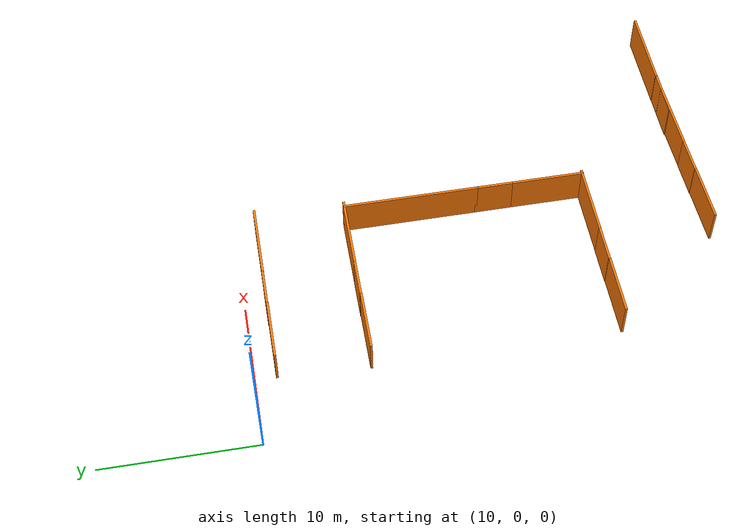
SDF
<sdf version="1.7">
 <world name="cimen_zemin_dunyasi">
  <model name="barier3_clone_clone_clone_clone_0_clone_clone">
   <link name="Wall_5">
    <pose>-1.25417 -2.31114 0 0 -0 0</pose>
    <inertial>
     <inertia><ixx>0</ixx><ixy>0</ixy><ixz>0</ixz><iyy>0</iyy><iyz>0</iyz><izz>0</izz></inertia>
     <mass>0</mass>
    </inertial>
    <visual name="Wall_5_Visual">
     <pose>0 0 1.25 0 -0 0</pose>
     <geometry><box><size>4.04839 0.15 2.5</size></box></geometry>
     <material>
      <script><uri>file://media/materials/scripts/gazebo.material</uri><name>Gazebo/Grey</name></script>
      <ambient>0.996078 0.47451 0.0196078 1</ambient>
      <shader type="pixel"/>
     </material>
     <meta><layer>0</layer></meta>
    </visual>
    <collision name="Wall_5_Collision">
     <pose>0 0 1.25 0 -0 0</pose>
     <geometry><box><size>4.04839 0.15 2.5</size></box></geometry>
     <surface>
      <friction>
       <ode><mu>1</mu><mu2>1</mu2><fdir1>0 0 0</fdir1><slip1>0</slip1><slip2>0</slip2></ode>
       <torsional>
        <coefficient>1</coefficient>
        <patch_radius>0</patch_radius>
        <surface_radius>0</surface_radius>
        <use_patch_radius>1</use_patch_radius>
        <ode><slip>0</slip></ode>
       </torsional>
      </friction>
      <bounce><restitution_coefficient>0</restitution_coefficient><threshold>1e+06</threshold></bounce>
      <contact>
       <collide_without_contact>0</collide_without_contact>
       <collide_without_contact_bitmask>1</collide_without_contact_bitmask>
       <collide_bitmask>1</collide_bitmask>
       <ode>
        <soft_cfm>0</soft_cfm>
        <soft_erp>0.2</soft_erp>
        <kp>1e+13</kp>
        <kd>1</kd>
        <max_vel>0.01</max_vel>
        <min_depth>0</min_depth>
       </ode>
       <bullet>
        <split_impulse>1</split_impulse>
        <split_impulse_penetration_threshold>-0.01</split_impulse_penetration_threshold>
        <soft_cfm>0</soft_cfm>
        <soft_erp>0.2</soft_erp>
        <kp>1e+13</kp>
        <kd>1</kd>
       </bullet>
      </contact>
     </surface>
    </collision>
   </link>
   <link name="Wall_7">
    <pose>2 -2.29057 0 0 -0 0</pose>
    <visual name="Wall_7_Visual">
     <pose>0 0 1.25 0 -0 0</pose>
     <geometry><box><size>2.5 0.15 2.5</size></box></geometry>
     <material>
      <script><uri>file://media/materials/scripts/gazebo.material</uri><name>Gazebo/Grey</name></script>
      <ambient>0.996078 0.47451 0.0196078 1</ambient>
      <shader type="pixel"/>
     </material>
     <meta><layer>0</layer></meta>
    </visual>
    <collision name="Wall_7_Collision">
     <pose>0 0 1.25 0 -0 0</pose>
     <geometry><box><size>2.5 0.15 2.5</size></box></geometry>
     <surface>
      <friction>
       <ode><mu>1</mu><mu2>1</mu2><fdir1>0 0 0</fdir1><slip1>0</slip1><slip2>0</slip2></ode>
       <torsional>
        <coefficient>1</coefficient>
        <patch_radius>0</patch_radius>
        <surface_radius>0</surface_radius>
        <use_patch_radius>1</use_patch_radius>
        <ode><slip>0</slip></ode>
       </torsional>
      </friction>
      <bounce><restitution_coefficient>0</restitution_coefficient><threshold>1e+06</threshold></bounce>
      <contact>
       <collide_without_contact>0</collide_without_contact>
       <collide_without_contact_bitmask>1</collide_without_contact_bitmask>
       <collide_bitmask>1</collide_bitmask>
       <ode>
        <soft_cfm>0</soft_cfm>
        <soft_erp>0.2</soft_erp>
        <kp>1e+13</kp>
        <kd>1</kd>
        <max_vel>0.01</max_vel>
        <min_depth>0</min_depth>
       </ode>
       <bullet>
        <split_impulse>1</split_impulse>
        <split_impulse_penetration_threshold>-0.01</split_impulse_penetration_threshold>
        <soft_cfm>0</soft_cfm>
        <soft_erp>0.2</soft_erp>
        <kp>1e+13</kp>
        <kd>1</kd>
       </bullet>
      </contact>
     </surface>
    </collision>
   </link>
   <link name="Wall_9">
    <pose>5.71906 -2.30051 0 0 -0 0</pose>
    <inertial>
     <inertia><ixx>0</ixx><ixy>0</ixy><ixz>0</ixz><iyy>0</iyy><iyz>0</iyz><izz>0</izz></inertia>
     <mass>0</mass>
    </inertial>
    <visual name="Wall_9_Visual">
     <pose>0 0 1.25 0 -0 0</pose>
     <geometry><box><size>4.97607 0.15 2.5</size></box></geometry>
     <material>
      <script><uri>file://media/materials/scripts/gazebo.material</uri><name>Gazebo/Grey</name></script>
      <ambient>0.996078 0.47451 0.0196078 1</ambient>
      <shader type="pixel"/>
     </material>
     <meta><layer>0</layer></meta>
    </visual>
    <collision name="Wall_9_Collision">
     <pose>0 0 1.25 0 -0 0</pose>
     <geometry><box><size>4.97607 0.15 2.5</size></box></geometry>
     <surface>
      <friction>
       <ode><mu>1</mu><mu2>1</mu2><fdir1>0 0 0</fdir1><slip1>0</slip1><slip2>0</slip2></ode>
       <torsional>
        <coefficient>1</coefficient>
        <patch_radius>0</patch_radius>
        <surface_radius>0</surface_radius>
        <use_patch_radius>1</use_patch_radius>
        <ode><slip>0</slip></ode>
       </torsional>
      </friction>
      <bounce><restitution_coefficient>0</restitution_coefficient><threshold>1e+06</threshold></bounce>
      <contact>
       <collide_without_contact>0</collide_without_contact>
       <collide_without_contact_bitmask>1</collide_without_contact_bitmask>
       <collide_bitmask>1</collide_bitmask>
       <ode>
        <soft_cfm>0</soft_cfm>
        <soft_erp>0.2</soft_erp>
        <kp>1e+13</kp>
        <kd>1</kd>
        <max_vel>0.01</max_vel>
        <min_depth>0</min_depth>
       </ode>
       <bullet>
        <split_impulse>1</split_impulse>
        <split_impulse_penetration_threshold>-0.01</split_impulse_penetration_threshold>
        <soft_cfm>0</soft_cfm>
        <soft_erp>0.2</soft_erp>
        <kp>1e+13</kp>
        <kd>1</kd>
       </bullet>
      </contact>
     </surface>
    </collision>
   </link>
   <static>1</static>
   <pose>17.8658 0.91508 0 0 -0 0</pose>
  </model>
  <model name="barier3_clone_clone_clone_clone_0_clone_clone_clone_clone_clone_clone">
   <link name="Wall_5">
    <pose>-1.25417 -2.31114 0 0 -0 0</pose>
    <inertial>
     <inertia><ixx>0</ixx><ixy>0</ixy><ixz>0</ixz><iyy>0</iyy><iyz>0</iyz><izz>0</izz></inertia>
     <mass>0</mass>
    </inertial>
    <visual name="Wall_5_Visual">
     <pose>0 0 1.25 0 -0 0</pose>
     <geometry><box><size>4.04839 0.15 2.5</size></box></geometry>
     <material>
      <script><uri>file://media/materials/scripts/gazebo.material</uri><name>Gazebo/Grey</name></script>
      <ambient>0.996078 0.47451 0.0196078 1</ambient>
      <shader type="pixel"/>
     </material>
     <meta><layer>0</layer></meta>
    </visual>
    <collision name="Wall_5_Collision">
     <pose>0 0 1.25 0 -0 0</pose>
     <geometry><box><size>4.04839 0.15 2.5</size></box></geometry>
     <surface>
      <friction>
       <ode><mu>1</mu><mu2>1</mu2><fdir1>0 0 0</fdir1><slip1>0</slip1><slip2>0</slip2></ode>
       <torsional>
        <coefficient>1</coefficient>
        <patch_radius>0</patch_radius>
        <surface_radius>0</surface_radius>
        <use_patch_radius>1</use_patch_radius>
        <ode><slip>0</slip></ode>
       </torsional>
      </friction>
      <bounce><restitution_coefficient>0</restitution_coefficient><threshold>1e+06</threshold></bounce>
      <contact>
       <collide_without_contact>0</collide_without_contact>
       <collide_without_contact_bitmask>1</collide_without_contact_bitmask>
       <collide_bitmask>1</collide_bitmask>
       <ode>
        <soft_cfm>0</soft_cfm>
        <soft_erp>0.2</soft_erp>
        <kp>1e+13</kp>
        <kd>1</kd>
        <max_vel>0.01</max_vel>
        <min_depth>0</min_depth>
       </ode>
       <bullet>
        <split_impulse>1</split_impulse>
        <split_impulse_penetration_threshold>-0.01</split_impulse_penetration_threshold>
        <soft_cfm>0</soft_cfm>
        <soft_erp>0.2</soft_erp>
        <kp>1e+13</kp>
        <kd>1</kd>
       </bullet>
      </contact>
     </surface>
    </collision>
   </link>
   <link name="Wall_7">
    <pose>2 -2.29057 0 0 -0 0</pose>
    <visual name="Wall_7_Visual">
     <pose>0 0 1.25 0 -0 0</pose>
     <geometry><box><size>2.5 0.15 2.5</size></box></geometry>
     <material>
      <script><uri>file://media/materials/scripts/gazebo.material</uri><name>Gazebo/Grey</name></script>
      <ambient>0.996078 0.47451 0.0196078 1</ambient>
      <shader type="pixel"/>
     </material>
     <meta><layer>0</layer></meta>
    </visual>
    <collision name="Wall_7_Collision">
     <pose>0 0 1.25 0 -0 0</pose>
     <geometry><box><size>2.5 0.15 2.5</size></box></geometry>
     <surface>
      <friction>
       <ode><mu>1</mu><mu2>1</mu2><fdir1>0 0 0</fdir1><slip1>0</slip1><slip2>0</slip2></ode>
       <torsional>
        <coefficient>1</coefficient>
        <patch_radius>0</patch_radius>
        <surface_radius>0</surface_radius>
        <use_patch_radius>1</use_patch_radius>
        <ode><slip>0</slip></ode>
       </torsional>
      </friction>
      <bounce><restitution_coefficient>0</restitution_coefficient><threshold>1e+06</threshold></bounce>
      <contact>
       <collide_without_contact>0</collide_without_contact>
       <collide_without_contact_bitmask>1</collide_without_contact_bitmask>
       <collide_bitmask>1</collide_bitmask>
       <ode>
        <soft_cfm>0</soft_cfm>
        <soft_erp>0.2</soft_erp>
        <kp>1e+13</kp>
        <kd>1</kd>
        <max_vel>0.01</max_vel>
        <min_depth>0</min_depth>
       </ode>
       <bullet>
        <split_impulse>1</split_impulse>
        <split_impulse_penetration_threshold>-0.01</split_impulse_penetration_threshold>
        <soft_cfm>0</soft_cfm>
        <soft_erp>0.2</soft_erp>
        <kp>1e+13</kp>
        <kd>1</kd>
       </bullet>
      </contact>
     </surface>
    </collision>
   </link>
   <link name="Wall_9">
    <pose>5.71906 -2.30051 0 0 -0 0</pose>
    <inertial>
     <inertia><ixx>0</ixx><ixy>0</ixy><ixz>0</ixz><iyy>0</iyy><iyz>0</iyz><izz>0</izz></inertia>
     <mass>0</mass>
    </inertial>
    <visual name="Wall_9_Visual">
     <pose>0 0 1.25 0 -0 0</pose>
     <geometry><box><size>4.97607 0.15 2.5</size></box></geometry>
     <material>
      <script><uri>file://media/materials/scripts/gazebo.material</uri><name>Gazebo/Grey</name></script>
      <ambient>0.996078 0.47451 0.0196078 1</ambient>
      <shader type="pixel"/>
     </material>
     <meta><layer>0</layer></meta>
    </visual>
    <collision name="Wall_9_Collision">
     <pose>0 0 1.25 0 -0 0</pose>
     <geometry><box><size>4.97607 0.15 2.5</size></box></geometry>
     <surface>
      <friction>
       <ode><mu>1</mu><mu2>1</mu2><fdir1>0 0 0</fdir1><slip1>0</slip1><slip2>0</slip2></ode>
       <torsional>
        <coefficient>1</coefficient>
        <patch_radius>0</patch_radius>
        <surface_radius>0</surface_radius>
        <use_patch_radius>1</use_patch_radius>
        <ode><slip>0</slip></ode>
       </torsional>
      </friction>
      <bounce><restitution_coefficient>0</restitution_coefficient><threshold>1e+06</threshold></bounce>
      <contact>
       <collide_without_contact>0</collide_without_contact>
       <collide_without_contact_bitmask>1</collide_without_contact_bitmask>
       <collide_bitmask>1</collide_bitmask>
       <ode>
        <soft_cfm>0</soft_cfm>
        <soft_erp>0.2</soft_erp>
        <kp>1e+13</kp>
        <kd>1</kd>
        <max_vel>0.01</max_vel>
        <min_depth>0</min_depth>
       </ode>
       <bullet>
        <split_impulse>1</split_impulse>
        <split_impulse_penetration_threshold>-0.01</split_impulse_penetration_threshold>
        <soft_cfm>0</soft_cfm>
        <soft_erp>0.2</soft_erp>
        <kp>1e+13</kp>
        <kd>1</kd>
       </bullet>
      </contact>
     </surface>
    </collision>
   </link>
   <static>1</static>
   <pose>23.7583 -28.5667 0 0 -0 0.030113</pose>
  </model>
  <model name="barier3_clone_clone_clone_clone_0_clone_clone_clone_clone_0_clone_clone">
   <link name="Wall_5">
    <pose>-0.876122 -2.31251 -0.000674 0 -0 0</pose>
    <inertial>
     <inertia><ixx>0</ixx><ixy>0</ixy><ixz>0</ixz><iyy>0</iyy><iyz>0</iyz><izz>0</izz></inertia>
     <mass>0</mass>
    </inertial>
    <visual name="Wall_5_Visual">
     <pose>0 0 1.25 0 -0 0</pose>
     <geometry><box><size>3.28339 0.15 2.5</size></box></geometry>
     <material>
      <script><uri>file://media/materials/scripts/gazebo.material</uri><name>Gazebo/Grey</name></script>
      <ambient>0.996078 0.47451 0.0196078 1</ambient>
      <shader type="pixel"/>
     </material>
     <meta><layer>0</layer></meta>
    </visual>
    <collision name="Wall_5_Collision">
     <pose>0 0 1.25 0 -0 0</pose>
     <geometry><box><size>3.28339 0.15 2.5</size></box></geometry>
     <surface>
      <friction>
       <ode><mu>1</mu><mu2>1</mu2><fdir1>0 0 0</fdir1><slip1>0</slip1><slip2>0</slip2></ode>
       <torsional>
        <coefficient>1</coefficient>
        <patch_radius>0</patch_radius>
        <surface_radius>0</surface_radius>
        <use_patch_radius>1</use_patch_radius>
        <ode><slip>0</slip></ode>
       </torsional>
      </friction>
      <bounce><restitution_coefficient>0</restitution_coefficient><threshold>1e+06</threshold></bounce>
      <contact>
       <collide_without_contact>0</collide_without_contact>
       <collide_without_contact_bitmask>1</collide_without_contact_bitmask>
       <collide_bitmask>1</collide_bitmask>
       <ode>
        <soft_cfm>0</soft_cfm>
        <soft_erp>0.2</soft_erp>
        <kp>1e+13</kp>
        <kd>1</kd>
        <max_vel>0.01</max_vel>
        <min_depth>0</min_depth>
       </ode>
       <bullet>
        <split_impulse>1</split_impulse>
        <split_impulse_penetration_threshold>-0.01</split_impulse_penetration_threshold>
        <soft_cfm>0</soft_cfm>
        <soft_erp>0.2</soft_erp>
        <kp>1e+13</kp>
        <kd>1</kd>
       </bullet>
      </contact>
     </surface>
    </collision>
   </link>
   <link name="Wall_9">
    <pose>3.5903 -2.29153 0.020971 0 -0 0</pose>
    <inertial>
     <inertia><ixx>0</ixx><ixy>0</ixy><ixz>0</ixz><iyy>0</iyy><iyz>0</iyz><izz>0</izz></inertia>
     <mass>0</mass>
    </inertial>
    <visual name="Wall_9_Visual">
     <pose>0 0 1.25 0 -0 0</pose>
     <geometry><box><size>5.65108 0.15 2.5</size></box></geometry>
     <material>
      <script><uri>file://media/materials/scripts/gazebo.material</uri><name>Gazebo/Grey</name></script>
      <ambient>0.996078 0.47451 0.0196078 1</ambient>
      <shader type="pixel"/>
     </material>
     <meta><layer>0</layer></meta>
    </visual>
    <collision name="Wall_9_Collision">
     <pose>0 0 1.25 0 -0 0</pose>
     <geometry><box><size>5.65108 0.15 2.5</size></box></geometry>
     <surface>
      <friction>
       <ode><mu>1</mu><mu2>1</mu2><fdir1>0 0 0</fdir1><slip1>0</slip1><slip2>0</slip2></ode>
       <torsional>
        <coefficient>1</coefficient>
        <patch_radius>0</patch_radius>
        <surface_radius>0</surface_radius>
        <use_patch_radius>1</use_patch_radius>
        <ode><slip>0</slip></ode>
       </torsional>
      </friction>
      <bounce><restitution_coefficient>0</restitution_coefficient><threshold>1e+06</threshold></bounce>
      <contact>
       <collide_without_contact>0</collide_without_contact>
       <collide_without_contact_bitmask>1</collide_without_contact_bitmask>
       <collide_bitmask>1</collide_bitmask>
       <ode>
        <soft_cfm>0</soft_cfm>
        <soft_erp>0.2</soft_erp>
        <kp>1e+13</kp>
        <kd>1</kd>
        <max_vel>0.01</max_vel>
        <min_depth>0</min_depth>
       </ode>
       <bullet>
        <split_impulse>1</split_impulse>
        <split_impulse_penetration_threshold>-0.01</split_impulse_penetration_threshold>
        <soft_cfm>0</soft_cfm>
        <soft_erp>0.2</soft_erp>
        <kp>1e+13</kp>
        <kd>1</kd>
       </bullet>
      </contact>
     </surface>
    </collision>
   </link>
   <static>1</static>
   <pose>32.5384 -28.3073 0 0 -0 0</pose>
  </model>
  <model name="barier3_clone_clone_1">
   <pose>27.7661 -15.2633 0 0 0 -1.56341</pose>
   <link name="Wall_5">
    <collision name="Wall_5_Collision">
     <geometry><box><size>9 0.15 2.5</size></box></geometry>
     <pose>0 0 1.25 0 -0 0</pose>
    </collision>
    <visual name="Wall_5_Visual">
     <pose>0 0 1.25 0 -0 0</pose>
     <geometry><box><size>9 0.15 2.5</size></box></geometry>
     <material>
      <script><uri>file://media/materials/scripts/gazebo.material</uri><name>Gazebo/Grey</name></script>
      <ambient>0.996078 0.47451 0.0196078 1</ambient>
     </material>
     <meta><layer>0</layer></meta>
    </visual>
    <pose>-3.6 -2.29057 0 0 -0 0</pose>
   </link>
   <link name="Wall_7">
    <collision name="Wall_7_Collision">
     <geometry><box><size>2.5 0.15 2.5</size></box></geometry>
     <pose>0 0 1.25 0 -0 0</pose>
    </collision>
    <visual name="Wall_7_Visual">
     <pose>0 0 1.25 0 -0 0</pose>
     <geometry><box><size>2.5 0.15 2.5</size></box></geometry>
     <material>
      <script><uri>file://media/materials/scripts/gazebo.material</uri><name>Gazebo/Grey</name></script>
      <ambient>0.996078 0.47451 0.0196078 1</ambient>
     </material>
     <meta><layer>0</layer></meta>
    </visual>
    <pose>2 -2.29057 0 0 -0 0</pose>
   </link>
   <link name="Wall_9">
    <collision name="Wall_9_Collision">
     <geometry><box><size>5 0.15 2.5</size></box></geometry>
     <pose>0 0 1.25 0 -0 0</pose>
    </collision>
    <visual name="Wall_9_Visual">
     <pose>0 0 1.25 0 -0 0</pose>
     <geometry><box><size>5 0.15 2.5</size></box></geometry>
     <material>
      <script><uri>file://media/materials/scripts/gazebo.material</uri><name>Gazebo/Grey</name></script>
      <ambient>0.996078 0.47451 0.0196078 1</ambient>
     </material>
     <meta><layer>0</layer></meta>
    </visual>
    <pose>5.6 -2.29057 0 0 -0 0</pose>
   </link>
   <static>1</static>
  </model>
  <model name="barier3_clone_clone_clone_clone_0_clone_clone_clone_clone_2">
   <link name="Wall_5">
    <pose>-1.25417 -2.31114 0 0 -0 0</pose>
    <inertial>
     <inertia><ixx>0</ixx><ixy>0</ixy><ixz>0</ixz><iyy>0</iyy><iyz>0</iyz><izz>0</izz></inertia>
     <mass>0</mass>
    </inertial>
    <visual name="Wall_5_Visual">
     <pose>0 0 1.25 0 -0 0</pose>
     <geometry><box><size>4.04839 0.15 2.5</size></box></geometry>
     <material>
      <script><uri>file://media/materials/scripts/gazebo.material</uri><name>Gazebo/Grey</name></script>
      <ambient>0.996078 0.47451 0.0196078 1</ambient>
      <shader type="pixel"/>
     </material>
     <meta><layer>0</layer></meta>
    </visual>
    <collision name="Wall_5_Collision">
     <pose>0 0 1.25 0 -0 0</pose>
     <geometry><box><size>4.04839 0.15 2.5</size></box></geometry>
     <surface>
      <friction>
       <ode><mu>1</mu><mu2>1</mu2><fdir1>0 0 0</fdir1><slip1>0</slip1><slip2>0</slip2></ode>
       <torsional>
        <coefficient>1</coefficient>
        <patch_radius>0</patch_radius>
        <surface_radius>0</surface_radius>
        <use_patch_radius>1</use_patch_radius>
        <ode><slip>0</slip></ode>
       </torsional>
      </friction>
      <bounce><restitution_coefficient>0</restitution_coefficient><threshold>1e+06</threshold></bounce>
      <contact>
       <collide_without_contact>0</collide_without_contact>
       <collide_without_contact_bitmask>1</collide_without_contact_bitmask>
       <collide_bitmask>1</collide_bitmask>
       <ode>
        <soft_cfm>0</soft_cfm>
        <soft_erp>0.2</soft_erp>
        <kp>1e+13</kp>
        <kd>1</kd>
        <max_vel>0.01</max_vel>
        <min_depth>0</min_depth>
       </ode>
       <bullet>
        <split_impulse>1</split_impulse>
        <split_impulse_penetration_threshold>-0.01</split_impulse_penetration_threshold>
        <soft_cfm>0</soft_cfm>
        <soft_erp>0.2</soft_erp>
        <kp>1e+13</kp>
        <kd>1</kd>
       </bullet>
      </contact>
     </surface>
    </collision>
   </link>
   <link name="Wall_7">
    <pose>2 -2.29057 0 0 -0 0</pose>
    <visual name="Wall_7_Visual">
     <pose>0 0 1.25 0 -0 0</pose>
     <geometry><box><size>2.5 0.15 2.5</size></box></geometry>
     <material>
      <script><uri>file://media/materials/scripts/gazebo.material</uri><name>Gazebo/Grey</name></script>
      <ambient>0.996078 0.47451 0.0196078 1</ambient>
      <shader type="pixel"/>
     </material>
     <meta><layer>0</layer></meta>
    </visual>
    <collision name="Wall_7_Collision">
     <pose>0 0 1.25 0 -0 0</pose>
     <geometry><box><size>2.5 0.15 2.5</size></box></geometry>
     <surface>
      <friction>
       <ode><mu>1</mu><mu2>1</mu2><fdir1>0 0 0</fdir1><slip1>0</slip1><slip2>0</slip2></ode>
       <torsional>
        <coefficient>1</coefficient>
        <patch_radius>0</patch_radius>
        <surface_radius>0</surface_radius>
        <use_patch_radius>1</use_patch_radius>
        <ode><slip>0</slip></ode>
       </torsional>
      </friction>
      <bounce><restitution_coefficient>0</restitution_coefficient><threshold>1e+06</threshold></bounce>
      <contact>
       <collide_without_contact>0</collide_without_contact>
       <collide_without_contact_bitmask>1</collide_without_contact_bitmask>
       <collide_bitmask>1</collide_bitmask>
       <ode>
        <soft_cfm>0</soft_cfm>
        <soft_erp>0.2</soft_erp>
        <kp>1e+13</kp>
        <kd>1</kd>
        <max_vel>0.01</max_vel>
        <min_depth>0</min_depth>
       </ode>
       <bullet>
        <split_impulse>1</split_impulse>
        <split_impulse_penetration_threshold>-0.01</split_impulse_penetration_threshold>
        <soft_cfm>0</soft_cfm>
        <soft_erp>0.2</soft_erp>
        <kp>1e+13</kp>
        <kd>1</kd>
       </bullet>
      </contact>
     </surface>
    </collision>
   </link>
   <link name="Wall_9">
    <pose>5.71906 -2.30051 0 0 -0 0</pose>
    <inertial>
     <inertia><ixx>0</ixx><ixy>0</ixy><ixz>0</ixz><iyy>0</iyy><iyz>0</iyz><izz>0</izz></inertia>
     <mass>0</mass>
    </inertial>
    <visual name="Wall_9_Visual">
     <pose>0 0 1.25 0 -0 0</pose>
     <geometry><box><size>4.97607 0.15 2.5</size></box></geometry>
     <material>
      <script><uri>file://media/materials/scripts/gazebo.material</uri><name>Gazebo/Grey</name></script>
      <ambient>0.996078 0.47451 0.0196078 1</ambient>
      <shader type="pixel"/>
     </material>
     <meta><layer>0</layer></meta>
    </visual>
    <collision name="Wall_9_Collision">
     <pose>0 0 1.25 0 -0 0</pose>
     <geometry><box><size>4.97607 0.15 2.5</size></box></geometry>
     <surface>
      <friction>
       <ode><mu>1</mu><mu2>1</mu2><fdir1>0 0 0</fdir1><slip1>0</slip1><slip2>0</slip2></ode>
       <torsional>
        <coefficient>1</coefficient>
        <patch_radius>0</patch_radius>
        <surface_radius>0</surface_radius>
        <use_patch_radius>1</use_patch_radius>
        <ode><slip>0</slip></ode>
       </torsional>
      </friction>
      <bounce><restitution_coefficient>0</restitution_coefficient><threshold>1e+06</threshold></bounce>
      <contact>
       <collide_without_contact>0</collide_without_contact>
       <collide_without_contact_bitmask>1</collide_without_contact_bitmask>
       <collide_bitmask>1</collide_bitmask>
       <ode>
        <soft_cfm>0</soft_cfm>
        <soft_erp>0.2</soft_erp>
        <kp>1e+13</kp>
        <kd>1</kd>
        <max_vel>0.01</max_vel>
        <min_depth>0</min_depth>
       </ode>
       <bullet>
        <split_impulse>1</split_impulse>
        <split_impulse_penetration_threshold>-0.01</split_impulse_penetration_threshold>
        <soft_cfm>0</soft_cfm>
        <soft_erp>0.2</soft_erp>
        <kp>1e+13</kp>
        <kd>1</kd>
       </bullet>
      </contact>
     </surface>
    </collision>
   </link>
   <static>1</static>
   <pose>17.55 -20.9873 0 0 -0 0</pose>
  </model>
  <model name="barier3_clone_clone_clone_clone_0_clone_clone_clone_clone_2_clone">
   <link name="Wall_5">
    <pose>-1.25417 -2.31114 0 0 -0 0</pose>
    <inertial>
     <inertia><ixx>0</ixx><ixy>0</ixy><ixz>0</ixz><iyy>0</iyy><iyz>0</iyz><izz>0</izz></inertia>
     <mass>0</mass>
    </inertial>
    <visual name="Wall_5_Visual">
     <pose>0 0 1.25 0 -0 0</pose>
     <geometry><box><size>4.04839 0.15 2.5</size></box></geometry>
     <material>
      <script><uri>file://media/materials/scripts/gazebo.material</uri><name>Gazebo/Grey</name></script>
      <ambient>0.996078 0.47451 0.0196078 1</ambient>
      <shader type="pixel"/>
     </material>
     <meta><layer>0</layer></meta>
    </visual>
    <collision name="Wall_5_Collision">
     <pose>0 0 1.25 0 -0 0</pose>
     <geometry><box><size>4.04839 0.15 2.5</size></box></geometry>
     <surface>
      <friction>
       <ode><mu>1</mu><mu2>1</mu2><fdir1>0 0 0</fdir1><slip1>0</slip1><slip2>0</slip2></ode>
       <torsional>
        <coefficient>1</coefficient>
        <patch_radius>0</patch_radius>
        <surface_radius>0</surface_radius>
        <use_patch_radius>1</use_patch_radius>
        <ode><slip>0</slip></ode>
       </torsional>
      </friction>
      <bounce><restitution_coefficient>0</restitution_coefficient><threshold>1e+06</threshold></bounce>
      <contact>
       <collide_without_contact>0</collide_without_contact>
       <collide_without_contact_bitmask>1</collide_without_contact_bitmask>
       <collide_bitmask>1</collide_bitmask>
       <ode>
        <soft_cfm>0</soft_cfm>
        <soft_erp>0.2</soft_erp>
        <kp>1e+13</kp>
        <kd>1</kd>
        <max_vel>0.01</max_vel>
        <min_depth>0</min_depth>
       </ode>
       <bullet>
        <split_impulse>1</split_impulse>
        <split_impulse_penetration_threshold>-0.01</split_impulse_penetration_threshold>
        <soft_cfm>0</soft_cfm>
        <soft_erp>0.2</soft_erp>
        <kp>1e+13</kp>
        <kd>1</kd>
       </bullet>
      </contact>
     </surface>
    </collision>
   </link>
   <link name="Wall_7">
    <pose>2 -2.29057 0 0 -0 0</pose>
    <visual name="Wall_7_Visual">
     <pose>0 0 1.25 0 -0 0</pose>
     <geometry><box><size>2.5 0.15 2.5</size></box></geometry>
     <material>
      <script><uri>file://media/materials/scripts/gazebo.material</uri><name>Gazebo/Grey</name></script>
      <ambient>0.996078 0.47451 0.0196078 1</ambient>
      <shader type="pixel"/>
     </material>
     <meta><layer>0</layer></meta>
    </visual>
    <collision name="Wall_7_Collision">
     <pose>0 0 1.25 0 -0 0</pose>
     <geometry><box><size>2.5 0.15 2.5</size></box></geometry>
     <surface>
      <friction>
       <ode><mu>1</mu><mu2>1</mu2><fdir1>0 0 0</fdir1><slip1>0</slip1><slip2>0</slip2></ode>
       <torsional>
        <coefficient>1</coefficient>
        <patch_radius>0</patch_radius>
        <surface_radius>0</surface_radius>
        <use_patch_radius>1</use_patch_radius>
        <ode><slip>0</slip></ode>
       </torsional>
      </friction>
      <bounce><restitution_coefficient>0</restitution_coefficient><threshold>1e+06</threshold></bounce>
      <contact>
       <collide_without_contact>0</collide_without_contact>
       <collide_without_contact_bitmask>1</collide_without_contact_bitmask>
       <collide_bitmask>1</collide_bitmask>
       <ode>
        <soft_cfm>0</soft_cfm>
        <soft_erp>0.2</soft_erp>
        <kp>1e+13</kp>
        <kd>1</kd>
        <max_vel>0.01</max_vel>
        <min_depth>0</min_depth>
       </ode>
       <bullet>
        <split_impulse>1</split_impulse>
        <split_impulse_penetration_threshold>-0.01</split_impulse_penetration_threshold>
        <soft_cfm>0</soft_cfm>
        <soft_erp>0.2</soft_erp>
        <kp>1e+13</kp>
        <kd>1</kd>
       </bullet>
      </contact>
     </surface>
    </collision>
   </link>
   <link name="Wall_9">
    <pose>5.71906 -2.30051 0 0 -0 0</pose>
    <inertial>
     <inertia><ixx>0</ixx><ixy>0</ixy><ixz>0</ixz><iyy>0</iyy><iyz>0</iyz><izz>0</izz></inertia>
     <mass>0</mass>
    </inertial>
    <visual name="Wall_9_Visual">
     <pose>0 0 1.25 0 -0 0</pose>
     <geometry><box><size>4.97607 0.15 2.5</size></box></geometry>
     <material>
      <script><uri>file://media/materials/scripts/gazebo.material</uri><name>Gazebo/Grey</name></script>
      <ambient>0.996078 0.47451 0.0196078 1</ambient>
      <shader type="pixel"/>
     </material>
     <meta><layer>0</layer></meta>
    </visual>
    <collision name="Wall_9_Collision">
     <pose>0 0 1.25 0 -0 0</pose>
     <geometry><box><size>4.97607 0.15 2.5</size></box></geometry>
     <surface>
      <friction>
       <ode><mu>1</mu><mu2>1</mu2><fdir1>0 0 0</fdir1><slip1>0</slip1><slip2>0</slip2></ode>
       <torsional>
        <coefficient>1</coefficient>
        <patch_radius>0</patch_radius>
        <surface_radius>0</surface_radius>
        <use_patch_radius>1</use_patch_radius>
        <ode><slip>0</slip></ode>
       </torsional>
      </friction>
      <bounce><restitution_coefficient>0</restitution_coefficient><threshold>1e+06</threshold></bounce>
      <contact>
       <collide_without_contact>0</collide_without_contact>
       <collide_without_contact_bitmask>1</collide_without_contact_bitmask>
       <collide_bitmask>1</collide_bitmask>
       <ode>
        <soft_cfm>0</soft_cfm>
        <soft_erp>0.2</soft_erp>
        <kp>1e+13</kp>
        <kd>1</kd>
        <max_vel>0.01</max_vel>
        <min_depth>0</min_depth>
       </ode>
       <bullet>
        <split_impulse>1</split_impulse>
        <split_impulse_penetration_threshold>-0.01</split_impulse_penetration_threshold>
        <soft_cfm>0</soft_cfm>
        <soft_erp>0.2</soft_erp>
        <kp>1e+13</kp>
        <kd>1</kd>
       </bullet>
      </contact>
     </surface>
    </collision>
   </link>
   <static>1</static>
   <pose>17.5631 -4.95491 0 0 -0 0</pose>
  </model>
 </world>
</sdf>
